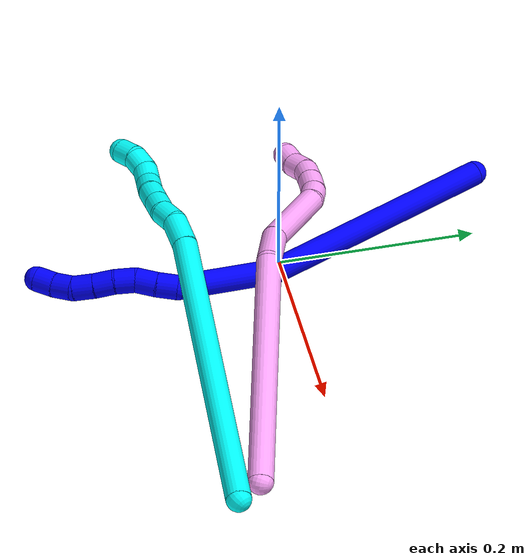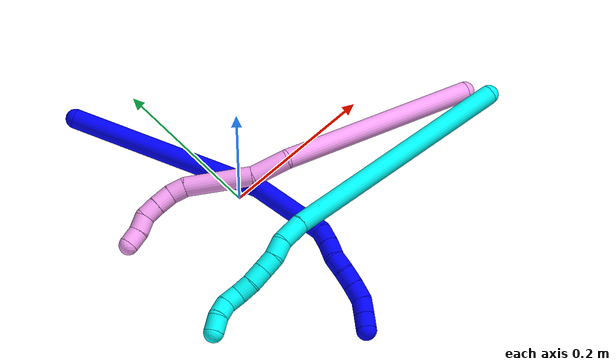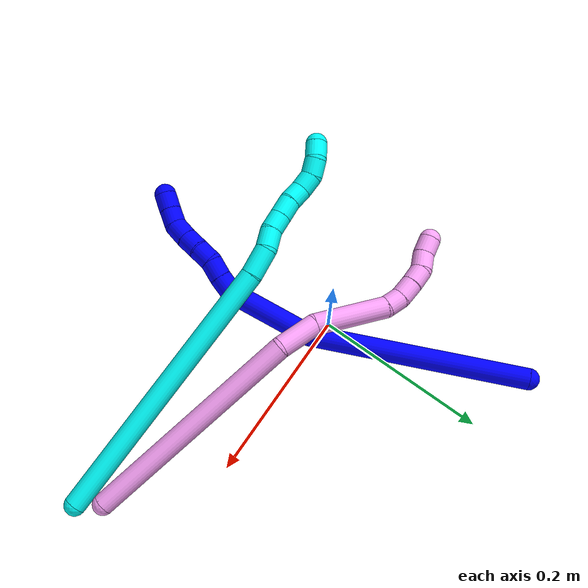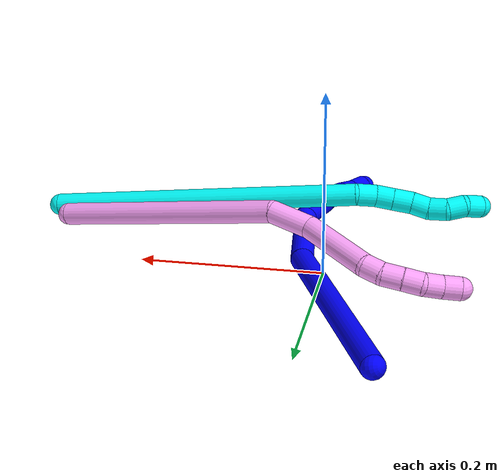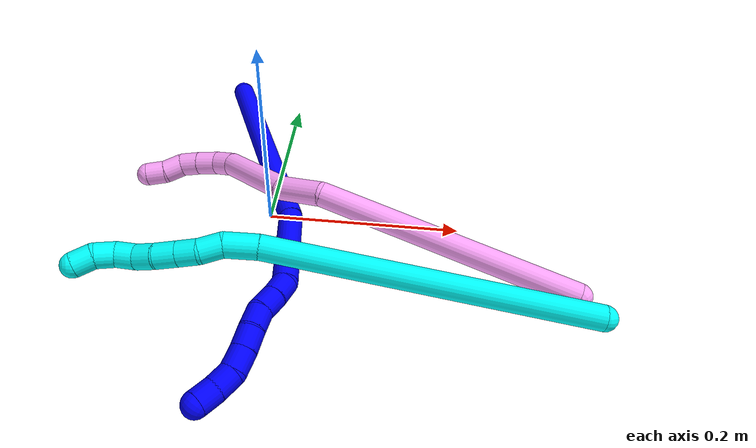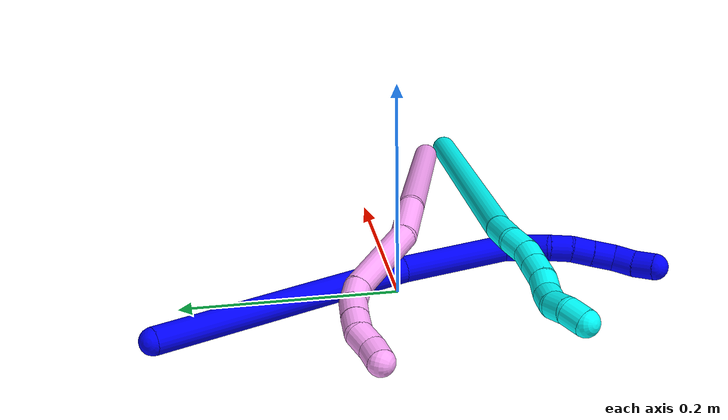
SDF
<sdf version="1.7">
 <world name="default">
  <model name="photoneo_s_sensor">
   <static>1</static>
   <pose>0 0 2 1.57079 1.57079 3.14159</pose>
   <link name="link">
    <inertial><mass>0.1</mass></inertial>
    <sensor name="sensor" type="depth">
     <update_rate>30</update_rate>
     <camera>
      <horizontal_fov>1.22</horizontal_fov>
      <image><width>1920</width><height>1200</height><format>B8G8R8</format></image>
      <clip><near>0.1</near><far>4</far></clip>
      <depth_camera><output>points</output></depth_camera>
     </camera>
     <plugin name="camera_plugin" filename="libgazebo_ros_depth_camera.so">
      <baseline>0.2</baseline>
      <alwaysOn>1</alwaysOn>
      <updateRate>0.0</updateRate>
      <cameraName>camera_ir</cameraName>
      <imageTopicName>/camera/color/image_raw</imageTopicName>
      <cameraInfoTopicName>/camera/color/camera_info</cameraInfoTopicName>
      <depthImageTopicName>/camera/depth/image_raw</depthImageTopicName>
      <depthImageCameraInfoTopicName>/camera/depth/camera_info</depthImageCameraInfoTopicName>
      <pointCloudTopicName>/camera/depth/points</pointCloudTopicName>
      <frameName>fr_optical</frameName>
      <pointCloudCutoff>0.1</pointCloudCutoff>
      <pointCloudCutoffMax>2.0</pointCloudCutoffMax>
      <distortionK1>0</distortionK1>
      <distortionK2>0</distortionK2>
      <distortionK3>0</distortionK3>
      <distortionT1>0</distortionT1>
      <distortionT2>0</distortionT2>
      <CxPrime>0</CxPrime>
      <Cx>0</Cx>
      <Cy>0</Cy>
      <focalLength>0</focalLength>
      <hackBaseline>0</hackBaseline>
     </plugin>
    </sensor>
   </link>
  </model>
  <model name="bin">
   <static>1</static>
   <link name="bottom">
    <collision name="collision-bottom">
     <pose>0 0 -0.01 0 -0 0</pose>
     <geometry><box><size>0.8 0.6 0.02</size></box></geometry>
     <surface>
      <friction><ode><mu>100</mu><mu2>100</mu2></ode></friction>
      <contact><collide_bitmask>65535</collide_bitmask></contact>
     </surface>
    </collision>
   </link>
   <link name="west_wall">
    <collision name="collision-west_wall">
     <pose>-0.41 0 0.1 0 -0 0</pose>
     <geometry><box><size>0.02 0.6 0.2</size></box></geometry>
     <surface>
      <friction><ode><mu>100</mu><mu2>100</mu2></ode></friction>
      <contact><collide_bitmask>65535</collide_bitmask></contact>
     </surface>
    </collision>
   </link>
   <link name="east_wall">
    <collision name="collision-east_wall">
     <pose>0.41 0 0.1 0 -0 0</pose>
     <geometry><box><size>0.02 0.6 0.2</size></box></geometry>
     <surface>
      <friction><ode><mu>100</mu><mu2>100</mu2></ode></friction>
      <contact><collide_bitmask>65535</collide_bitmask></contact>
     </surface>
    </collision>
   </link>
   <link name="south_wall">
    <collision name="collision-south_wall">
     <pose>0 -0.31 0.1 0 -0 0</pose>
     <geometry><box><size>0.8 0.02 0.2</size></box></geometry>
     <surface>
      <friction><ode><mu>100</mu><mu2>100</mu2></ode></friction>
      <contact><collide_bitmask>65535</collide_bitmask></contact>
     </surface>
    </collision>
   </link>
   <link name="north_wall">
    <collision name="collision-north_wall">
     <pose>0 0.31 0.1 0 -0 0</pose>
     <geometry><box><size>0.8 0.02 0.2</size></box></geometry>
     <surface>
      <friction><ode><mu>100</mu><mu2>100</mu2></ode></friction>
      <contact><collide_bitmask>65535</collide_bitmask></contact>
     </surface>
    </collision>
   </link>
  </model>
  <model name="1">
   <static>0</static>
   <link name="1">
    <collision name="collision-cylinder-e_1_1_4">
     <pose>0.044581 -0.08214 -0.085067 2.3737 0.360527 0.84753</pose>
     <geometry><cylinder><radius>0.0125</radius><length>0.252752</length></cylinder></geometry>
     <surface>
      <friction><ode><mu>1.16</mu><mu2>1.16</mu2><slip1>0</slip1><slip2>0</slip2></ode></friction>
      <contact><ode><kp>1e+06</kp><kd>1</kd><max_vel>0</max_vel><min_depth>0.001</min_depth></ode></contact>
     </surface>
    </collision>
    <visual name="visual-cylinder-e_1_1_4">
     <pose>0.044581 -0.08214 -0.085067 2.3737 0.360527 0.84753</pose>
     <geometry><cylinder><radius>0.0125</radius><length>0.252752</length></cylinder></geometry>
     <material><ambient>0 0 1 1</ambient></material>
    </visual>
    <collision name="collision-cylinder-e_2_4_5">
     <pose>0.10799 -0.206264 -0.191586 2.04318 0.379939 0.608849</pose>
     <geometry><cylinder><radius>0.0125</radius><length>0.101533</length></cylinder></geometry>
     <surface>
      <friction><ode><mu>1.16</mu><mu2>1.16</mu2><slip1>0</slip1><slip2>0</slip2></ode></friction>
      <contact><ode><kp>1e+06</kp><kd>1</kd><max_vel>0</max_vel><min_depth>0.001</min_depth></ode></contact>
     </surface>
    </collision>
    <visual name="visual-cylinder-e_2_4_5">
     <pose>0.10799 -0.206264 -0.191586 2.04318 0.379939 0.608849</pose>
     <geometry><cylinder><radius>0.0125</radius><length>0.101533</length></cylinder></geometry>
     <material><ambient>0 0 1 1</ambient></material>
    </visual>
    <collision name="collision-cylinder-e_3_5_6">
     <pose>0.12929 -0.258562 -0.213414 1.60724 0.23504 0.243681</pose>
     <geometry><cylinder><radius>0.0125</radius><length>0.021228</length></cylinder></geometry>
     <surface>
      <friction><ode><mu>1.16</mu><mu2>1.16</mu2><slip1>0</slip1><slip2>0</slip2></ode></friction>
      <contact><ode><kp>1e+06</kp><kd>1</kd><max_vel>0</max_vel><min_depth>0.001</min_depth></ode></contact>
     </surface>
    </collision>
    <visual name="visual-cylinder-e_3_5_6">
     <pose>0.12929 -0.258562 -0.213414 1.60724 0.23504 0.243681</pose>
     <geometry><cylinder><radius>0.0125</radius><length>0.021228</length></cylinder></geometry>
     <material><ambient>0 0 1 1</ambient></material>
    </visual>
    <collision name="collision-cylinder-e_4_6_7">
     <pose>0.134028 -0.279332 -0.213062 1.5012 0.212951 0.198721</pose>
     <geometry><cylinder><radius>0.0125</radius><length>0.021446</length></cylinder></geometry>
     <surface>
      <friction><ode><mu>1.16</mu><mu2>1.16</mu2><slip1>0</slip1><slip2>0</slip2></ode></friction>
      <contact><ode><kp>1e+06</kp><kd>1</kd><max_vel>0</max_vel><min_depth>0.001</min_depth></ode></contact>
     </surface>
    </collision>
    <visual name="visual-cylinder-e_4_6_7">
     <pose>0.134028 -0.279332 -0.213062 1.5012 0.212951 0.198721</pose>
     <geometry><cylinder><radius>0.0125</radius><length>0.021446</length></cylinder></geometry>
     <material><ambient>0 0 1 1</ambient></material>
    </visual>
    <collision name="collision-cylinder-e_5_7_8">
     <pose>0.137877 -0.299781 -0.214802 1.81298 0.152589 0.194634</pose>
     <geometry><cylinder><radius>0.0125</radius><length>0.020829</length></cylinder></geometry>
     <surface>
      <friction><ode><mu>1.16</mu><mu2>1.16</mu2><slip1>0</slip1><slip2>0</slip2></ode></friction>
      <contact><ode><kp>1e+06</kp><kd>1</kd><max_vel>0</max_vel><min_depth>0.001</min_depth></ode></contact>
     </surface>
    </collision>
    <visual name="visual-cylinder-e_5_7_8">
     <pose>0.137877 -0.299781 -0.214802 1.81298 0.152589 0.194634</pose>
     <geometry><cylinder><radius>0.0125</radius><length>0.020829</length></cylinder></geometry>
     <material><ambient>0 0 1 1</ambient></material>
    </visual>
    <collision name="collision-cylinder-e_6_8_9">
     <pose>0.139377 -0.319566 -0.220171 1.85878 -0.008065 -0.010801</pose>
     <geometry><cylinder><radius>0.0125</radius><length>0.020427</length></cylinder></geometry>
     <surface>
      <friction><ode><mu>1.16</mu><mu2>1.16</mu2><slip1>0</slip1><slip2>0</slip2></ode></friction>
      <contact><ode><kp>1e+06</kp><kd>1</kd><max_vel>0</max_vel><min_depth>0.001</min_depth></ode></contact>
     </surface>
    </collision>
    <visual name="visual-cylinder-e_6_8_9">
     <pose>0.139377 -0.319566 -0.220171 1.85878 -0.008065 -0.010801</pose>
     <geometry><cylinder><radius>0.0125</radius><length>0.020427</length></cylinder></geometry>
     <material><ambient>0 0 1 1</ambient></material>
    </visual>
    <collision name="collision-cylinder-e_7_9_10">
     <pose>0.139365 -0.339882 -0.225251 1.77503 0.006524 0.008014</pose>
     <geometry><cylinder><radius>0.0125</radius><length>0.021494</length></cylinder></geometry>
     <surface>
      <friction><ode><mu>1.16</mu><mu2>1.16</mu2><slip1>0</slip1><slip2>0</slip2></ode></friction>
      <contact><ode><kp>1e+06</kp><kd>1</kd><max_vel>0</max_vel><min_depth>0.001</min_depth></ode></contact>
     </surface>
    </collision>
    <visual name="visual-cylinder-e_7_9_10">
     <pose>0.139365 -0.339882 -0.225251 1.77503 0.006524 0.008014</pose>
     <geometry><cylinder><radius>0.0125</radius><length>0.021494</length></cylinder></geometry>
     <material><ambient>0 0 1 1</ambient></material>
    </visual>
    <collision name="collision-cylinder-e_8_10_11">
     <pose>0.138851 -0.360335 -0.225902 1.41799 -0.058051 -0.049799</pose>
     <geometry><cylinder><radius>0.0125</radius><length>0.020127</length></cylinder></geometry>
     <surface>
      <friction><ode><mu>1.16</mu><mu2>1.16</mu2><slip1>0</slip1><slip2>0</slip2></ode></friction>
      <contact><ode><kp>1e+06</kp><kd>1</kd><max_vel>0</max_vel><min_depth>0.001</min_depth></ode></contact>
     </surface>
    </collision>
    <visual name="visual-cylinder-e_8_10_11">
     <pose>0.138851 -0.360335 -0.225902 1.41799 -0.058051 -0.049799</pose>
     <geometry><cylinder><radius>0.0125</radius><length>0.020127</length></cylinder></geometry>
     <material><ambient>0 0 1 1</ambient></material>
    </visual>
    <collision name="collision-cylinder-e_9_11_2">
     <pose>0.139127 -0.380017 -0.221964 1.32874 0.085336 0.066845</pose>
     <geometry><cylinder><radius>0.0125</radius><length>0.020165</length></cylinder></geometry>
     <surface>
      <friction><ode><mu>1.16</mu><mu2>1.16</mu2><slip1>0</slip1><slip2>0</slip2></ode></friction>
      <contact><ode><kp>1e+06</kp><kd>1</kd><max_vel>0</max_vel><min_depth>0.001</min_depth></ode></contact>
     </surface>
    </collision>
    <visual name="visual-cylinder-e_9_11_2">
     <pose>0.139127 -0.380017 -0.221964 1.32874 0.085336 0.066845</pose>
     <geometry><cylinder><radius>0.0125</radius><length>0.020165</length></cylinder></geometry>
     <material><ambient>0 0 1 1</ambient></material>
    </visual>
    <collision name="collision-sphere-2">
     <pose>0.139986 -0.38977 -0.219557 0 -0 0</pose>
     <geometry><sphere><radius>0.0125</radius></sphere></geometry>
     <surface>
      <friction><ode><mu>1.16</mu><mu2>1.16</mu2><slip1>0</slip1><slip2>0</slip2></ode></friction>
      <contact><ode><kp>1e+06</kp><kd>1</kd><max_vel>0</max_vel><min_depth>0.001</min_depth></ode></contact>
     </surface>
    </collision>
    <visual name="visual-sphere-2">
     <pose>0.139986 -0.38977 -0.219557 0 -0 0</pose>
     <geometry><sphere><radius>0.0125</radius></sphere></geometry>
     <material><ambient>0 0 1 1</ambient></material>
    </visual>
    <collision name="collision-sphere-11">
     <pose>0.138268 -0.370264 -0.224372 0 -0 0</pose>
     <geometry><sphere><radius>0.0125</radius></sphere></geometry>
     <surface>
      <friction><ode><mu>1.16</mu><mu2>1.16</mu2><slip1>0</slip1><slip2>0</slip2></ode></friction>
      <contact><ode><kp>1e+06</kp><kd>1</kd><max_vel>0</max_vel><min_depth>0.001</min_depth></ode></contact>
     </surface>
    </collision>
    <visual name="visual-sphere-11">
     <pose>0.138268 -0.370264 -0.224372 0 -0 0</pose>
     <geometry><sphere><radius>0.0125</radius></sphere></geometry>
     <material><ambient>0 0 1 1</ambient></material>
    </visual>
    <collision name="collision-sphere-10">
     <pose>0.139435 -0.350406 -0.227431 0 -0 0</pose>
     <geometry><sphere><radius>0.0125</radius></sphere></geometry>
     <surface>
      <friction><ode><mu>1.16</mu><mu2>1.16</mu2><slip1>0</slip1><slip2>0</slip2></ode></friction>
      <contact><ode><kp>1e+06</kp><kd>1</kd><max_vel>0</max_vel><min_depth>0.001</min_depth></ode></contact>
     </surface>
    </collision>
    <visual name="visual-sphere-10">
     <pose>0.139435 -0.350406 -0.227431 0 -0 0</pose>
     <geometry><sphere><radius>0.0125</radius></sphere></geometry>
     <material><ambient>0 0 1 1</ambient></material>
    </visual>
    <collision name="collision-sphere-9">
     <pose>0.139295 -0.329359 -0.223072 0 -0 0</pose>
     <geometry><sphere><radius>0.0125</radius></sphere></geometry>
     <surface>
      <friction><ode><mu>1.16</mu><mu2>1.16</mu2><slip1>0</slip1><slip2>0</slip2></ode></friction>
      <contact><ode><kp>1e+06</kp><kd>1</kd><max_vel>0</max_vel><min_depth>0.001</min_depth></ode></contact>
     </surface>
    </collision>
    <visual name="visual-sphere-9">
     <pose>0.139295 -0.329359 -0.223072 0 -0 0</pose>
     <geometry><sphere><radius>0.0125</radius></sphere></geometry>
     <material><ambient>0 0 1 1</ambient></material>
    </visual>
    <collision name="collision-sphere-4">
     <pose>0.089163 -0.16428 -0.170134 0 -0 0</pose>
     <geometry><sphere><radius>0.0125</radius></sphere></geometry>
     <surface>
      <friction><ode><mu>1.16</mu><mu2>1.16</mu2><slip1>0</slip1><slip2>0</slip2></ode></friction>
      <contact><ode><kp>1e+06</kp><kd>1</kd><max_vel>0</max_vel><min_depth>0.001</min_depth></ode></contact>
     </surface>
    </collision>
    <visual name="visual-sphere-4">
     <pose>0.089163 -0.16428 -0.170134 0 -0 0</pose>
     <geometry><sphere><radius>0.0125</radius></sphere></geometry>
     <material><ambient>0 0 1 1</ambient></material>
    </visual>
    <collision name="collision-sphere-1">
     <geometry><sphere><radius>0.0125</radius></sphere></geometry>
     <surface>
      <friction><ode><mu>1.16</mu><mu2>1.16</mu2><slip1>0</slip1><slip2>0</slip2></ode></friction>
      <contact><ode><kp>1e+06</kp><kd>1</kd><max_vel>0</max_vel><min_depth>0.001</min_depth></ode></contact>
     </surface>
    </collision>
    <visual name="visual-sphere-1">
     <geometry><sphere><radius>0.0125</radius></sphere></geometry>
     <material><ambient>0 0 1 1</ambient></material>
    </visual>
    <collision name="collision-sphere-8">
     <pose>0.13946 -0.309774 -0.21727 0 -0 0</pose>
     <geometry><sphere><radius>0.0125</radius></sphere></geometry>
     <surface>
      <friction><ode><mu>1.16</mu><mu2>1.16</mu2><slip1>0</slip1><slip2>0</slip2></ode></friction>
      <contact><ode><kp>1e+06</kp><kd>1</kd><max_vel>0</max_vel><min_depth>0.001</min_depth></ode></contact>
     </surface>
    </collision>
    <visual name="visual-sphere-8">
     <pose>0.13946 -0.309774 -0.21727 0 -0 0</pose>
     <geometry><sphere><radius>0.0125</radius></sphere></geometry>
     <material><ambient>0 0 1 1</ambient></material>
    </visual>
    <collision name="collision-sphere-5">
     <pose>0.126818 -0.248247 -0.213038 0 -0 0</pose>
     <geometry><sphere><radius>0.0125</radius></sphere></geometry>
     <surface>
      <friction><ode><mu>1.16</mu><mu2>1.16</mu2><slip1>0</slip1><slip2>0</slip2></ode></friction>
      <contact><ode><kp>1e+06</kp><kd>1</kd><max_vel>0</max_vel><min_depth>0.001</min_depth></ode></contact>
     </surface>
    </collision>
    <visual name="visual-sphere-5">
     <pose>0.126818 -0.248247 -0.213038 0 -0 0</pose>
     <geometry><sphere><radius>0.0125</radius></sphere></geometry>
     <material><ambient>0 0 1 1</ambient></material>
    </visual>
    <collision name="collision-sphere-6">
     <pose>0.131761 -0.268877 -0.21379 0 -0 0</pose>
     <geometry><sphere><radius>0.0125</radius></sphere></geometry>
     <surface>
      <friction><ode><mu>1.16</mu><mu2>1.16</mu2><slip1>0</slip1><slip2>0</slip2></ode></friction>
      <contact><ode><kp>1e+06</kp><kd>1</kd><max_vel>0</max_vel><min_depth>0.001</min_depth></ode></contact>
     </surface>
    </collision>
    <visual name="visual-sphere-6">
     <pose>0.131761 -0.268877 -0.21379 0 -0 0</pose>
     <geometry><sphere><radius>0.0125</radius></sphere></geometry>
     <material><ambient>0 0 1 1</ambient></material>
    </visual>
    <collision name="collision-sphere-7">
     <pose>0.136294 -0.289788 -0.212333 0 -0 0</pose>
     <geometry><sphere><radius>0.0125</radius></sphere></geometry>
     <surface>
      <friction><ode><mu>1.16</mu><mu2>1.16</mu2><slip1>0</slip1><slip2>0</slip2></ode></friction>
      <contact><ode><kp>1e+06</kp><kd>1</kd><max_vel>0</max_vel><min_depth>0.001</min_depth></ode></contact>
     </surface>
    </collision>
    <visual name="visual-sphere-7">
     <pose>0.136294 -0.289788 -0.212333 0 -0 0</pose>
     <geometry><sphere><radius>0.0125</radius></sphere></geometry>
     <material><ambient>0 0 1 1</ambient></material>
    </visual>
    <inertial>
     <pose>0.084332 -0.176351 -0.145777 0 -0 0</pose>
     <mass>0.5</mass>
     <inertia>
      <ixx>0.001931</ixx>
      <ixy>0</ixy>
      <ixz>0</ixz>
      <iyy>0.000556</iyy>
      <iyz>0</iyz>
      <izz>0.000437</izz>
     </inertia>
    </inertial>
   </link>
   <pose>-0.077087 0.222004 0.012069 0.311799 -1.16614 -0.734313</pose>
  </model>
  <model name="3">
   <static>0</static>
   <link name="3">
    <collision name="collision-cylinder-e_1_1_4">
     <pose>-0.083306 -0.014237 -0.136556 3.03771 -0.545378 -2.77399</pose>
     <geometry><cylinder><radius>0.0125</radius><length>0.321186</length></cylinder></geometry>
     <surface>
      <friction><ode><mu>1.16</mu><mu2>1.16</mu2><slip1>0</slip1><slip2>0</slip2></ode></friction>
      <contact><ode><kp>1e+06</kp><kd>1</kd><max_vel>0</max_vel><min_depth>0.001</min_depth></ode></contact>
     </surface>
    </collision>
    <visual name="visual-cylinder-e_1_1_4">
     <pose>-0.083306 -0.014237 -0.136556 3.03771 -0.545378 -2.77399</pose>
     <geometry><cylinder><radius>0.0125</radius><length>0.321186</length></cylinder></geometry>
     <material><ambient>0.003922 1 0.996078 1</ambient></material>
    </visual>
    <collision name="collision-cylinder-e_2_4_5">
     <pose>-0.173699 -0.028169 -0.28828 -3.12145 -0.43697 3.05093</pose>
     <geometry><cylinder><radius>0.0125</radius><length>0.033489</length></cylinder></geometry>
     <surface>
      <friction><ode><mu>1.16</mu><mu2>1.16</mu2><slip1>0</slip1><slip2>0</slip2></ode></friction>
      <contact><ode><kp>1e+06</kp><kd>1</kd><max_vel>0</max_vel><min_depth>0.001</min_depth></ode></contact>
     </surface>
    </collision>
    <visual name="visual-cylinder-e_2_4_5">
     <pose>-0.173699 -0.028169 -0.28828 -3.12145 -0.43697 3.05093</pose>
     <geometry><cylinder><radius>0.0125</radius><length>0.033489</length></cylinder></geometry>
     <material><ambient>0.003922 1 0.996078 1</ambient></material>
    </visual>
    <collision name="collision-cylinder-e_3_5_6">
     <pose>-0.183757 -0.024209 -0.313811 -2.80262 -0.264176 1.32035</pose>
     <geometry><cylinder><radius>0.0125</radius><length>0.022766</length></cylinder></geometry>
     <surface>
      <friction><ode><mu>1.16</mu><mu2>1.16</mu2><slip1>0</slip1><slip2>0</slip2></ode></friction>
      <contact><ode><kp>1e+06</kp><kd>1</kd><max_vel>0</max_vel><min_depth>0.001</min_depth></ode></contact>
     </surface>
    </collision>
    <visual name="visual-cylinder-e_3_5_6">
     <pose>-0.183757 -0.024209 -0.313811 -2.80262 -0.264176 1.32035</pose>
     <geometry><cylinder><radius>0.0125</radius><length>0.022766</length></cylinder></geometry>
     <material><ambient>0.003922 1 0.996078 1</ambient></material>
    </visual>
    <collision name="collision-cylinder-e_4_6_7">
     <pose>-0.191938 -0.018151 -0.33245 -2.85885 -0.543571 2.19726</pose>
     <geometry><cylinder><radius>0.0125</radius><length>0.02014</length></cylinder></geometry>
     <surface>
      <friction><ode><mu>1.16</mu><mu2>1.16</mu2><slip1>0</slip1><slip2>0</slip2></ode></friction>
      <contact><ode><kp>1e+06</kp><kd>1</kd><max_vel>0</max_vel><min_depth>0.001</min_depth></ode></contact>
     </surface>
    </collision>
    <visual name="visual-cylinder-e_4_6_7">
     <pose>-0.191938 -0.018151 -0.33245 -2.85885 -0.543571 2.19726</pose>
     <geometry><cylinder><radius>0.0125</radius><length>0.02014</length></cylinder></geometry>
     <material><ambient>0.003922 1 0.996078 1</ambient></material>
    </visual>
    <collision name="collision-cylinder-e_5_7_8">
     <pose>-0.202737 -0.013232 -0.349791 -2.87103 -0.536291 2.22171</pose>
     <geometry><cylinder><radius>0.0125</radius><length>0.021887</length></cylinder></geometry>
     <surface>
      <friction><ode><mu>1.16</mu><mu2>1.16</mu2><slip1>0</slip1><slip2>0</slip2></ode></friction>
      <contact><ode><kp>1e+06</kp><kd>1</kd><max_vel>0</max_vel><min_depth>0.001</min_depth></ode></contact>
     </surface>
    </collision>
    <visual name="visual-cylinder-e_5_7_8">
     <pose>-0.202737 -0.013232 -0.349791 -2.87103 -0.536291 2.22171</pose>
     <geometry><cylinder><radius>0.0125</radius><length>0.021887</length></cylinder></geometry>
     <material><ambient>0.003922 1 0.996078 1</ambient></material>
    </visual>
    <collision name="collision-cylinder-e_6_8_9">
     <pose>-0.215035 -0.008414 -0.366074 -2.83265 -0.724563 2.36195</pose>
     <geometry><cylinder><radius>0.0125</radius><length>0.020237</length></cylinder></geometry>
     <surface>
      <friction><ode><mu>1.16</mu><mu2>1.16</mu2><slip1>0</slip1><slip2>0</slip2></ode></friction>
      <contact><ode><kp>1e+06</kp><kd>1</kd><max_vel>0</max_vel><min_depth>0.001</min_depth></ode></contact>
     </surface>
    </collision>
    <visual name="visual-cylinder-e_6_8_9">
     <pose>-0.215035 -0.008414 -0.366074 -2.83265 -0.724563 2.36195</pose>
     <geometry><cylinder><radius>0.0125</radius><length>0.020237</length></cylinder></geometry>
     <material><ambient>0.003922 1 0.996078 1</ambient></material>
    </visual>
    <collision name="collision-cylinder-e_7_9_10">
     <pose>-0.227236 -0.006083 -0.381767 -3.13831 -0.57514 3.13048</pose>
     <geometry><cylinder><radius>0.0125</radius><length>0.020201</length></cylinder></geometry>
     <surface>
      <friction><ode><mu>1.16</mu><mu2>1.16</mu2><slip1>0</slip1><slip2>0</slip2></ode></friction>
      <contact><ode><kp>1e+06</kp><kd>1</kd><max_vel>0</max_vel><min_depth>0.001</min_depth></ode></contact>
     </surface>
    </collision>
    <visual name="visual-cylinder-e_7_9_10">
     <pose>-0.227236 -0.006083 -0.381767 -3.13831 -0.57514 3.13048</pose>
     <geometry><cylinder><radius>0.0125</radius><length>0.020201</length></cylinder></geometry>
     <material><ambient>0.003922 1 0.996078 1</ambient></material>
    </visual>
    <collision name="collision-cylinder-e_8_10_11">
     <pose>-0.23445 -0.005427 -0.400118 -3.07804 -0.17211 2.43554</pose>
     <geometry><cylinder><radius>0.0125</radius><length>0.020089</length></cylinder></geometry>
     <surface>
      <friction><ode><mu>1.16</mu><mu2>1.16</mu2><slip1>0</slip1><slip2>0</slip2></ode></friction>
      <contact><ode><kp>1e+06</kp><kd>1</kd><max_vel>0</max_vel><min_depth>0.001</min_depth></ode></contact>
     </surface>
    </collision>
    <visual name="visual-cylinder-e_8_10_11">
     <pose>-0.23445 -0.005427 -0.400118 -3.07804 -0.17211 2.43554</pose>
     <geometry><cylinder><radius>0.0125</radius><length>0.020089</length></cylinder></geometry>
     <material><ambient>0.003922 1 0.996078 1</ambient></material>
    </visual>
    <collision name="collision-cylinder-e_9_11_2">
     <pose>-0.237264 -0.00054 -0.41898 -2.69905 -0.109509 0.477984</pose>
     <geometry><cylinder><radius>0.0125</radius><length>0.020005</length></cylinder></geometry>
     <surface>
      <friction><ode><mu>1.16</mu><mu2>1.16</mu2><slip1>0</slip1><slip2>0</slip2></ode></friction>
      <contact><ode><kp>1e+06</kp><kd>1</kd><max_vel>0</max_vel><min_depth>0.001</min_depth></ode></contact>
     </surface>
    </collision>
    <visual name="visual-cylinder-e_9_11_2">
     <pose>-0.237264 -0.00054 -0.41898 -2.69905 -0.109509 0.477984</pose>
     <geometry><cylinder><radius>0.0125</radius><length>0.020005</length></cylinder></geometry>
     <material><ambient>0.003922 1 0.996078 1</ambient></material>
    </visual>
    <collision name="collision-sphere-2">
     <pose>-0.238357 0.003718 -0.427965 0 -0 0</pose>
     <geometry><sphere><radius>0.0125</radius></sphere></geometry>
     <surface>
      <friction><ode><mu>1.16</mu><mu2>1.16</mu2><slip1>0</slip1><slip2>0</slip2></ode></friction>
      <contact><ode><kp>1e+06</kp><kd>1</kd><max_vel>0</max_vel><min_depth>0.001</min_depth></ode></contact>
     </surface>
    </collision>
    <visual name="visual-sphere-2">
     <pose>-0.238357 0.003718 -0.427965 0 -0 0</pose>
     <geometry><sphere><radius>0.0125</radius></sphere></geometry>
     <material><ambient>0.003922 1 0.996078 1</ambient></material>
    </visual>
    <collision name="collision-sphere-11">
     <pose>-0.236171 -0.004798 -0.409995 0 -0 0</pose>
     <geometry><sphere><radius>0.0125</radius></sphere></geometry>
     <surface>
      <friction><ode><mu>1.16</mu><mu2>1.16</mu2><slip1>0</slip1><slip2>0</slip2></ode></friction>
      <contact><ode><kp>1e+06</kp><kd>1</kd><max_vel>0</max_vel><min_depth>0.001</min_depth></ode></contact>
     </surface>
    </collision>
    <visual name="visual-sphere-11">
     <pose>-0.236171 -0.004798 -0.409995 0 -0 0</pose>
     <geometry><sphere><radius>0.0125</radius></sphere></geometry>
     <material><ambient>0.003922 1 0.996078 1</ambient></material>
    </visual>
    <collision name="collision-sphere-10">
     <pose>-0.23273 -0.006055 -0.390242 0 -0 0</pose>
     <geometry><sphere><radius>0.0125</radius></sphere></geometry>
     <surface>
      <friction><ode><mu>1.16</mu><mu2>1.16</mu2><slip1>0</slip1><slip2>0</slip2></ode></friction>
      <contact><ode><kp>1e+06</kp><kd>1</kd><max_vel>0</max_vel><min_depth>0.001</min_depth></ode></contact>
     </surface>
    </collision>
    <visual name="visual-sphere-10">
     <pose>-0.23273 -0.006055 -0.390242 0 -0 0</pose>
     <geometry><sphere><radius>0.0125</radius></sphere></geometry>
     <material><ambient>0.003922 1 0.996078 1</ambient></material>
    </visual>
    <collision name="collision-sphere-9">
     <pose>-0.221742 -0.006111 -0.373292 0 -0 0</pose>
     <geometry><sphere><radius>0.0125</radius></sphere></geometry>
     <surface>
      <friction><ode><mu>1.16</mu><mu2>1.16</mu2><slip1>0</slip1><slip2>0</slip2></ode></friction>
      <contact><ode><kp>1e+06</kp><kd>1</kd><max_vel>0</max_vel><min_depth>0.001</min_depth></ode></contact>
     </surface>
    </collision>
    <visual name="visual-sphere-9">
     <pose>-0.221742 -0.006111 -0.373292 0 -0 0</pose>
     <geometry><sphere><radius>0.0125</radius></sphere></geometry>
     <material><ambient>0.003922 1 0.996078 1</ambient></material>
    </visual>
    <collision name="collision-sphere-4">
     <pose>-0.166613 -0.028474 -0.273112 0 -0 0</pose>
     <geometry><sphere><radius>0.0125</radius></sphere></geometry>
     <surface>
      <friction><ode><mu>1.16</mu><mu2>1.16</mu2><slip1>0</slip1><slip2>0</slip2></ode></friction>
      <contact><ode><kp>1e+06</kp><kd>1</kd><max_vel>0</max_vel><min_depth>0.001</min_depth></ode></contact>
     </surface>
    </collision>
    <visual name="visual-sphere-4">
     <pose>-0.166613 -0.028474 -0.273112 0 -0 0</pose>
     <geometry><sphere><radius>0.0125</radius></sphere></geometry>
     <material><ambient>0.003922 1 0.996078 1</ambient></material>
    </visual>
    <collision name="collision-sphere-1">
     <geometry><sphere><radius>0.0125</radius></sphere></geometry>
     <surface>
      <friction><ode><mu>1.16</mu><mu2>1.16</mu2><slip1>0</slip1><slip2>0</slip2></ode></friction>
      <contact><ode><kp>1e+06</kp><kd>1</kd><max_vel>0</max_vel><min_depth>0.001</min_depth></ode></contact>
     </surface>
    </collision>
    <visual name="visual-sphere-1">
     <geometry><sphere><radius>0.0125</radius></sphere></geometry>
     <material><ambient>0.003922 1 0.996078 1</ambient></material>
    </visual>
    <collision name="collision-sphere-8">
     <pose>-0.208329 -0.010718 -0.358856 0 -0 0</pose>
     <geometry><sphere><radius>0.0125</radius></sphere></geometry>
     <surface>
      <friction><ode><mu>1.16</mu><mu2>1.16</mu2><slip1>0</slip1><slip2>0</slip2></ode></friction>
      <contact><ode><kp>1e+06</kp><kd>1</kd><max_vel>0</max_vel><min_depth>0.001</min_depth></ode></contact>
     </surface>
    </collision>
    <visual name="visual-sphere-8">
     <pose>-0.208329 -0.010718 -0.358856 0 -0 0</pose>
     <geometry><sphere><radius>0.0125</radius></sphere></geometry>
     <material><ambient>0.003922 1 0.996078 1</ambient></material>
    </visual>
    <collision name="collision-sphere-5">
     <pose>-0.180785 -0.027863 -0.303448 0 -0 0</pose>
     <geometry><sphere><radius>0.0125</radius></sphere></geometry>
     <surface>
      <friction><ode><mu>1.16</mu><mu2>1.16</mu2><slip1>0</slip1><slip2>0</slip2></ode></friction>
      <contact><ode><kp>1e+06</kp><kd>1</kd><max_vel>0</max_vel><min_depth>0.001</min_depth></ode></contact>
     </surface>
    </collision>
    <visual name="visual-sphere-5">
     <pose>-0.180785 -0.027863 -0.303448 0 -0 0</pose>
     <geometry><sphere><radius>0.0125</radius></sphere></geometry>
     <material><ambient>0.003922 1 0.996078 1</ambient></material>
    </visual>
    <collision name="collision-sphere-6">
     <pose>-0.18673 -0.020555 -0.324174 0 -0 0</pose>
     <geometry><sphere><radius>0.0125</radius></sphere></geometry>
     <surface>
      <friction><ode><mu>1.16</mu><mu2>1.16</mu2><slip1>0</slip1><slip2>0</slip2></ode></friction>
      <contact><ode><kp>1e+06</kp><kd>1</kd><max_vel>0</max_vel><min_depth>0.001</min_depth></ode></contact>
     </surface>
    </collision>
    <visual name="visual-sphere-6">
     <pose>-0.18673 -0.020555 -0.324174 0 -0 0</pose>
     <geometry><sphere><radius>0.0125</radius></sphere></geometry>
     <material><ambient>0.003922 1 0.996078 1</ambient></material>
    </visual>
    <collision name="collision-sphere-7">
     <pose>-0.197146 -0.015747 -0.340726 0 -0 0</pose>
     <geometry><sphere><radius>0.0125</radius></sphere></geometry>
     <surface>
      <friction><ode><mu>1.16</mu><mu2>1.16</mu2><slip1>0</slip1><slip2>0</slip2></ode></friction>
      <contact><ode><kp>1e+06</kp><kd>1</kd><max_vel>0</max_vel><min_depth>0.001</min_depth></ode></contact>
     </surface>
    </collision>
    <visual name="visual-sphere-7">
     <pose>-0.197146 -0.015747 -0.340726 0 -0 0</pose>
     <geometry><sphere><radius>0.0125</radius></sphere></geometry>
     <material><ambient>0.003922 1 0.996078 1</ambient></material>
    </visual>
    <inertial>
     <pose>-0.126917 -0.014271 -0.213099 0 -0 0</pose>
     <mass>0.5</mass>
     <inertia>
      <ixx>-0.003084</ixx>
      <ixy>0</ixy>
      <ixz>0</ixz>
      <iyy>0.001792</iyy>
      <iyz>0</iyz>
      <izz>0.001655</izz>
     </inertia>
    </inertial>
   </link>
   <pose>0.32971 -0.112903 0.012337 -1.86824 -0.375422 -0.963007</pose>
  </model>
  <model name="4">
   <static>0</static>
   <link name="4">
    <collision name="collision-cylinder-e_1_1_4">
     <pose>-0.11683 0.037629 0.048362 -0.66122 -1.08775 0.409268</pose>
     <geometry><cylinder><radius>0.0125</radius><length>0.263849</length></cylinder></geometry>
     <surface>
      <friction><ode><mu>1.16</mu><mu2>1.16</mu2><slip1>0</slip1><slip2>0</slip2></ode></friction>
      <contact><ode><kp>1e+06</kp><kd>1</kd><max_vel>0</max_vel><min_depth>0.001</min_depth></ode></contact>
     </surface>
    </collision>
    <visual name="visual-cylinder-e_1_1_4">
     <pose>-0.11683 0.037629 0.048362 -0.66122 -1.08775 0.409268</pose>
     <geometry><cylinder><radius>0.0125</radius><length>0.263849</length></cylinder></geometry>
     <material><ambient>1 0.65098 0.996078 1</ambient></material>
    </visual>
    <collision name="collision-cylinder-e_2_4_5">
     <pose>-0.255801 0.07339 0.103766 0.259277 -1.25291 -0.18814</pose>
     <geometry><cylinder><radius>0.0125</radius><length>0.046617</length></cylinder></geometry>
     <surface>
      <friction><ode><mu>1.16</mu><mu2>1.16</mu2><slip1>0</slip1><slip2>0</slip2></ode></friction>
      <contact><ode><kp>1e+06</kp><kd>1</kd><max_vel>0</max_vel><min_depth>0.001</min_depth></ode></contact>
     </surface>
    </collision>
    <visual name="visual-cylinder-e_2_4_5">
     <pose>-0.255801 0.07339 0.103766 0.259277 -1.25291 -0.18814</pose>
     <geometry><cylinder><radius>0.0125</radius><length>0.046617</length></cylinder></geometry>
     <material><ambient>1 0.65098 0.996078 1</ambient></material>
    </visual>
    <collision name="collision-cylinder-e_3_5_6">
     <pose>-0.320533 0.06796 0.10934 1.96174 -1.48058 -1.87686</pose>
     <geometry><cylinder><radius>0.0125</radius><length>0.085531</length></cylinder></geometry>
     <surface>
      <friction><ode><mu>1.16</mu><mu2>1.16</mu2><slip1>0</slip1><slip2>0</slip2></ode></friction>
      <contact><ode><kp>1e+06</kp><kd>1</kd><max_vel>0</max_vel><min_depth>0.001</min_depth></ode></contact>
     </surface>
    </collision>
    <visual name="visual-cylinder-e_3_5_6">
     <pose>-0.320533 0.06796 0.10934 1.96174 -1.48058 -1.87686</pose>
     <geometry><cylinder><radius>0.0125</radius><length>0.085531</length></cylinder></geometry>
     <material><ambient>1 0.65098 0.996078 1</ambient></material>
    </visual>
    <collision name="collision-cylinder-e_4_6_7">
     <pose>-0.372844 0.063074 0.110869 0.415671 -1.24564 -0.300615</pose>
     <geometry><cylinder><radius>0.0125</radius><length>0.020513</length></cylinder></geometry>
     <surface>
      <friction><ode><mu>1.16</mu><mu2>1.16</mu2><slip1>0</slip1><slip2>0</slip2></ode></friction>
      <contact><ode><kp>1e+06</kp><kd>1</kd><max_vel>0</max_vel><min_depth>0.001</min_depth></ode></contact>
     </surface>
    </collision>
    <visual name="visual-cylinder-e_4_6_7">
     <pose>-0.372844 0.063074 0.110869 0.415671 -1.24564 -0.300615</pose>
     <geometry><cylinder><radius>0.0125</radius><length>0.020513</length></cylinder></geometry>
     <material><ambient>1 0.65098 0.996078 1</ambient></material>
    </visual>
    <collision name="collision-cylinder-e_5_7_8">
     <pose>-0.391824 0.061224 0.119832 0.088065 -0.996727 -0.047945</pose>
     <geometry><cylinder><radius>0.0125</radius><length>0.022057</length></cylinder></geometry>
     <surface>
      <friction><ode><mu>1.16</mu><mu2>1.16</mu2><slip1>0</slip1><slip2>0</slip2></ode></friction>
      <contact><ode><kp>1e+06</kp><kd>1</kd><max_vel>0</max_vel><min_depth>0.001</min_depth></ode></contact>
     </surface>
    </collision>
    <visual name="visual-cylinder-e_5_7_8">
     <pose>-0.391824 0.061224 0.119832 0.088065 -0.996727 -0.047945</pose>
     <geometry><cylinder><radius>0.0125</radius><length>0.022057</length></cylinder></geometry>
     <material><ambient>1 0.65098 0.996078 1</ambient></material>
    </visual>
    <collision name="collision-cylinder-e_6_8_9">
     <pose>-0.409241 0.05986 0.131794 0.138789 -0.93229 -0.069912</pose>
     <geometry><cylinder><radius>0.0125</radius><length>0.020315</length></cylinder></geometry>
     <surface>
      <friction><ode><mu>1.16</mu><mu2>1.16</mu2><slip1>0</slip1><slip2>0</slip2></ode></friction>
      <contact><ode><kp>1e+06</kp><kd>1</kd><max_vel>0</max_vel><min_depth>0.001</min_depth></ode></contact>
     </surface>
    </collision>
    <visual name="visual-cylinder-e_6_8_9">
     <pose>-0.409241 0.05986 0.131794 0.138789 -0.93229 -0.069912</pose>
     <geometry><cylinder><radius>0.0125</radius><length>0.020315</length></cylinder></geometry>
     <material><ambient>1 0.65098 0.996078 1</ambient></material>
    </visual>
    <collision name="collision-cylinder-e_7_9_10">
     <pose>-0.422483 0.057263 0.14679 0.192989 -0.506322 -0.050074</pose>
     <geometry><cylinder><radius>0.0125</radius><length>0.020974</length></cylinder></geometry>
     <surface>
      <friction><ode><mu>1.16</mu><mu2>1.16</mu2><slip1>0</slip1><slip2>0</slip2></ode></friction>
      <contact><ode><kp>1e+06</kp><kd>1</kd><max_vel>0</max_vel><min_depth>0.001</min_depth></ode></contact>
     </surface>
    </collision>
    <visual name="visual-cylinder-e_7_9_10">
     <pose>-0.422483 0.057263 0.14679 0.192989 -0.506322 -0.050074</pose>
     <geometry><cylinder><radius>0.0125</radius><length>0.020974</length></cylinder></geometry>
     <material><ambient>1 0.65098 0.996078 1</ambient></material>
    </visual>
    <collision name="collision-cylinder-e_8_10_2">
     <pose>-0.43429 0.055385 0.163292 0.015892 -0.730584 -0.006078</pose>
     <geometry><cylinder><radius>0.0125</radius><length>0.020143</length></cylinder></geometry>
     <surface>
      <friction><ode><mu>1.16</mu><mu2>1.16</mu2><slip1>0</slip1><slip2>0</slip2></ode></friction>
      <contact><ode><kp>1e+06</kp><kd>1</kd><max_vel>0</max_vel><min_depth>0.001</min_depth></ode></contact>
     </surface>
    </collision>
    <visual name="visual-cylinder-e_8_10_2">
     <pose>-0.43429 0.055385 0.163292 0.015892 -0.730584 -0.006078</pose>
     <geometry><cylinder><radius>0.0125</radius><length>0.020143</length></cylinder></geometry>
     <material><ambient>1 0.65098 0.996078 1</ambient></material>
    </visual>
    <collision name="collision-sphere-2">
     <pose>-0.441011 0.055266 0.170792 0 -0 0</pose>
     <geometry><sphere><radius>0.0125</radius></sphere></geometry>
     <surface>
      <friction><ode><mu>1.16</mu><mu2>1.16</mu2><slip1>0</slip1><slip2>0</slip2></ode></friction>
      <contact><ode><kp>1e+06</kp><kd>1</kd><max_vel>0</max_vel><min_depth>0.001</min_depth></ode></contact>
     </surface>
    </collision>
    <visual name="visual-sphere-2">
     <pose>-0.441011 0.055266 0.170792 0 -0 0</pose>
     <geometry><sphere><radius>0.0125</radius></sphere></geometry>
     <material><ambient>1 0.65098 0.996078 1</ambient></material>
    </visual>
    <collision name="collision-sphere-10">
     <pose>-0.427569 0.055504 0.155792 0 -0 0</pose>
     <geometry><sphere><radius>0.0125</radius></sphere></geometry>
     <surface>
      <friction><ode><mu>1.16</mu><mu2>1.16</mu2><slip1>0</slip1><slip2>0</slip2></ode></friction>
      <contact><ode><kp>1e+06</kp><kd>1</kd><max_vel>0</max_vel><min_depth>0.001</min_depth></ode></contact>
     </surface>
    </collision>
    <visual name="visual-sphere-10">
     <pose>-0.427569 0.055504 0.155792 0 -0 0</pose>
     <geometry><sphere><radius>0.0125</radius></sphere></geometry>
     <material><ambient>1 0.65098 0.996078 1</ambient></material>
    </visual>
    <collision name="collision-sphere-9">
     <pose>-0.417397 0.059023 0.137789 0 -0 0</pose>
     <geometry><sphere><radius>0.0125</radius></sphere></geometry>
     <surface>
      <friction><ode><mu>1.16</mu><mu2>1.16</mu2><slip1>0</slip1><slip2>0</slip2></ode></friction>
      <contact><ode><kp>1e+06</kp><kd>1</kd><max_vel>0</max_vel><min_depth>0.001</min_depth></ode></contact>
     </surface>
    </collision>
    <visual name="visual-sphere-9">
     <pose>-0.417397 0.059023 0.137789 0 -0 0</pose>
     <geometry><sphere><radius>0.0125</radius></sphere></geometry>
     <material><ambient>1 0.65098 0.996078 1</ambient></material>
    </visual>
    <collision name="collision-sphere-4">
     <pose>-0.23366 0.075257 0.096724 0 -0 0</pose>
     <geometry><sphere><radius>0.0125</radius></sphere></geometry>
     <surface>
      <friction><ode><mu>1.16</mu><mu2>1.16</mu2><slip1>0</slip1><slip2>0</slip2></ode></friction>
      <contact><ode><kp>1e+06</kp><kd>1</kd><max_vel>0</max_vel><min_depth>0.001</min_depth></ode></contact>
     </surface>
    </collision>
    <visual name="visual-sphere-4">
     <pose>-0.23366 0.075257 0.096724 0 -0 0</pose>
     <geometry><sphere><radius>0.0125</radius></sphere></geometry>
     <material><ambient>1 0.65098 0.996078 1</ambient></material>
    </visual>
    <collision name="collision-sphere-1">
     <geometry><sphere><radius>0.0125</radius></sphere></geometry>
     <surface>
      <friction><ode><mu>1.16</mu><mu2>1.16</mu2><slip1>0</slip1><slip2>0</slip2></ode></friction>
      <contact><ode><kp>1e+06</kp><kd>1</kd><max_vel>0</max_vel><min_depth>0.001</min_depth></ode></contact>
     </surface>
    </collision>
    <visual name="visual-sphere-1">
     <geometry><sphere><radius>0.0125</radius></sphere></geometry>
     <material><ambient>1 0.65098 0.996078 1</ambient></material>
    </visual>
    <collision name="collision-sphere-8">
     <pose>-0.401085 0.060698 0.125798 0 -0 0</pose>
     <geometry><sphere><radius>0.0125</radius></sphere></geometry>
     <surface>
      <friction><ode><mu>1.16</mu><mu2>1.16</mu2><slip1>0</slip1><slip2>0</slip2></ode></friction>
      <contact><ode><kp>1e+06</kp><kd>1</kd><max_vel>0</max_vel><min_depth>0.001</min_depth></ode></contact>
     </surface>
    </collision>
    <visual name="visual-sphere-8">
     <pose>-0.401085 0.060698 0.125798 0 -0 0</pose>
     <geometry><sphere><radius>0.0125</radius></sphere></geometry>
     <material><ambient>1 0.65098 0.996078 1</ambient></material>
    </visual>
    <collision name="collision-sphere-5">
     <pose>-0.277942 0.071522 0.110808 0 -0 0</pose>
     <geometry><sphere><radius>0.0125</radius></sphere></geometry>
     <surface>
      <friction><ode><mu>1.16</mu><mu2>1.16</mu2><slip1>0</slip1><slip2>0</slip2></ode></friction>
      <contact><ode><kp>1e+06</kp><kd>1</kd><max_vel>0</max_vel><min_depth>0.001</min_depth></ode></contact>
     </surface>
    </collision>
    <visual name="visual-sphere-5">
     <pose>-0.277942 0.071522 0.110808 0 -0 0</pose>
     <geometry><sphere><radius>0.0125</radius></sphere></geometry>
     <material><ambient>1 0.65098 0.996078 1</ambient></material>
    </visual>
    <collision name="collision-sphere-6">
     <pose>-0.363125 0.064397 0.107871 0 -0 0</pose>
     <geometry><sphere><radius>0.0125</radius></sphere></geometry>
     <surface>
      <friction><ode><mu>1.16</mu><mu2>1.16</mu2><slip1>0</slip1><slip2>0</slip2></ode></friction>
      <contact><ode><kp>1e+06</kp><kd>1</kd><max_vel>0</max_vel><min_depth>0.001</min_depth></ode></contact>
     </surface>
    </collision>
    <visual name="visual-sphere-6">
     <pose>-0.363125 0.064397 0.107871 0 -0 0</pose>
     <geometry><sphere><radius>0.0125</radius></sphere></geometry>
     <material><ambient>1 0.65098 0.996078 1</ambient></material>
    </visual>
    <collision name="collision-sphere-7">
     <pose>-0.382563 0.061751 0.113866 0 -0 0</pose>
     <geometry><sphere><radius>0.0125</radius></sphere></geometry>
     <surface>
      <friction><ode><mu>1.16</mu><mu2>1.16</mu2><slip1>0</slip1><slip2>0</slip2></ode></friction>
      <contact><ode><kp>1e+06</kp><kd>1</kd><max_vel>0</max_vel><min_depth>0.001</min_depth></ode></contact>
     </surface>
    </collision>
    <visual name="visual-sphere-7">
     <pose>-0.382563 0.061751 0.113866 0 -0 0</pose>
     <geometry><sphere><radius>0.0125</radius></sphere></geometry>
     <material><ambient>1 0.65098 0.996078 1</ambient></material>
    </visual>
    <inertial>
     <pose>-0.224759 0.050678 0.081825 0 -0 0</pose>
     <mass>0.5</mass>
     <inertia>
      <ixx>0.000908</ixx>
      <ixy>0</ixy>
      <ixz>0</ixz>
      <iyy>0.001806</iyy>
      <iyz>0</iyz>
      <izz>0.001015</izz>
     </inertia>
    </inertial>
   </link>
   <pose>0.311181 -0.087856 0.011496 1.60948 -0.107716 -0.643302</pose>
  </model>
 </world>
</sdf>
